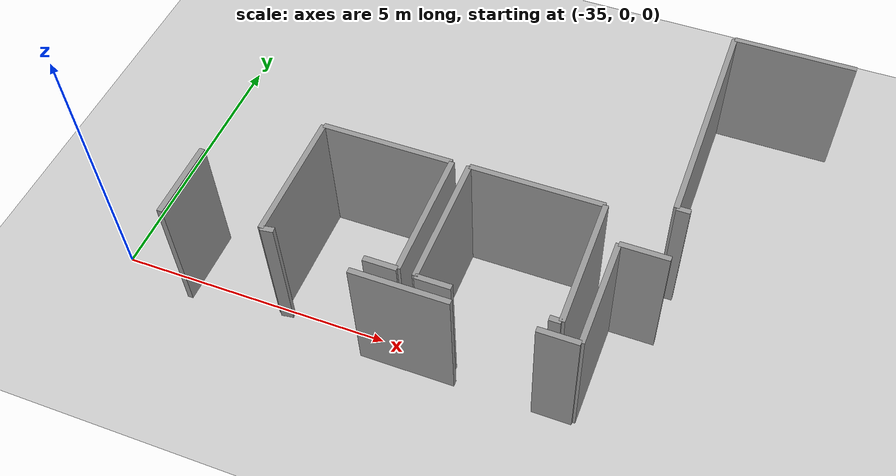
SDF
<sdf version="1.6">
 <world name="default">
  <model name="ground_plane">
   <static>1</static>
   <link name="link">
    <collision name="collision">
     <geometry><plane><normal>0 0 1</normal><size>100 100</size></plane></geometry>
     <surface><friction><ode><mu>100</mu><mu2>50</mu2></ode></friction></surface>
    </collision>
    <visual name="visual">
     <cast_shadows>0</cast_shadows>
     <geometry><plane><normal>0 0 1</normal><size>100 100</size></plane></geometry>
     <material>
      <script><uri>file://media/materials/scripts/gazebo.material</uri><name>Gazebo/Grey</name></script>
     </material>
    </visual>
   </link>
  </model>
  <model name="50045231">
   <static>1</static>
   <link name="Wall_22">
    <collision name="Wall_22_Collision">
     <geometry><box><size>1.41821204027 0.1 2.5</size></box></geometry>
     <pose>0.709106020137 0 1.25 0 0 0</pose>
    </collision>
    <visual name="Wall_22_Visual">
     <pose>0.709106020137 0 1.25 0 0 0</pose>
     <geometry><box><size>1.41821204027 0.1 2.5</size></box></geometry>
     <material>
      <script><uri>file://media/materials/scripts/gazebo.material</uri><name>Gazebo/Grey</name></script>
      <ambient>1 1 1 1</ambient>
     </material>
    </visual>
    <pose>13.4067161102 -13.8649037882 0 0 0 -1.57079632679</pose>
   </link>
   <link name="Wall_31">
    <collision name="Wall_31_Collision">
     <geometry><box><size>1.72667347625 0.1 2.5</size></box></geometry>
     <pose>0.863336738125 0 1.25 0 0 0</pose>
    </collision>
    <visual name="Wall_31_Visual">
     <pose>0.863336738125 0 1.25 0 0 0</pose>
     <geometry><box><size>1.72667347625 0.1 2.5</size></box></geometry>
     <material>
      <script><uri>file://media/materials/scripts/gazebo.material</uri><name>Gazebo/Grey</name></script>
      <ambient>1 1 1 1</ambient>
     </material>
    </visual>
    <pose>16.7492910209 -15.2748681965 0 0 0 0.0</pose>
   </link>
   <link name="Wall_32">
    <collision name="Wall_32_Collision">
     <geometry><box><size>0.70916946346 0.1 2.5</size></box></geometry>
     <pose>0.35458473173 0 1.25 0 0 0</pose>
    </collision>
    <visual name="Wall_32_Visual">
     <pose>0.35458473173 0 1.25 0 0 0</pose>
     <geometry><box><size>0.70916946346 0.1 2.5</size></box></geometry>
     <material>
      <script><uri>file://media/materials/scripts/gazebo.material</uri><name>Gazebo/Grey</name></script>
      <ambient>1 1 1 1</ambient>
     </material>
    </visual>
    <pose>19.8474822517 -15.2748681965 0 0 0 0.0</pose>
   </link>
   <link name="Wall_33">
    <collision name="Wall_33_Collision">
     <geometry><box><size>1.95227793251 0.1 2.5</size></box></geometry>
     <pose>0.976138966254 0 1.25 0 0 0</pose>
    </collision>
    <visual name="Wall_33_Visual">
     <pose>0.976138966254 0 1.25 0 0 0</pose>
     <geometry><box><size>1.95227793251 0.1 2.5</size></box></geometry>
     <material>
      <script><uri>file://media/materials/scripts/gazebo.material</uri><name>Gazebo/Grey</name></script>
      <ambient>1 1 1 1</ambient>
     </material>
    </visual>
    <pose>20.5566517152 -15.2748681965 0 0 0 1.57079632679</pose>
   </link>
   <link name="Wall_34">
    <collision name="Wall_34_Collision">
     <geometry><box><size>0.859276365459 0.1 2.5</size></box></geometry>
     <pose>0.429638182729 0 1.25 0 0 0</pose>
    </collision>
    <visual name="Wall_34_Visual">
     <pose>0.429638182729 0 1.25 0 0 0</pose>
     <geometry><box><size>0.859276365459 0.1 2.5</size></box></geometry>
     <material>
      <script><uri>file://media/materials/scripts/gazebo.material</uri><name>Gazebo/Grey</name></script>
      <ambient>1 1 1 1</ambient>
     </material>
    </visual>
    <pose>20.5566517152 -13.322590264 0 0 0 0.0</pose>
   </link>
   <link name="Wall_42">
    <collision name="Wall_42_Collision">
     <geometry><box><size>0.200227127096 0.1 2.5</size></box></geometry>
     <pose>0.100113563548 0 1.25 0 0 0</pose>
    </collision>
    <visual name="Wall_42_Visual">
     <pose>0.100113563548 0 1.25 0 0 0</pose>
     <geometry><box><size>0.200227127096 0.1 2.5</size></box></geometry>
     <material>
      <script><uri>file://media/materials/scripts/gazebo.material</uri><name>Gazebo/Grey</name></script>
      <ambient>1 1 1 1</ambient>
     </material>
    </visual>
    <pose>20.1645719796 -15.0161463257 0 0 0 3.14159265359</pose>
   </link>
   <link name="Wall_43">
    <collision name="Wall_43_Collision">
     <geometry><box><size>0.617937965119 0.1 2.5</size></box></geometry>
     <pose>0.308968982559 0 1.25 0 0 0</pose>
    </collision>
    <visual name="Wall_43_Visual">
     <pose>0.308968982559 0 1.25 0 0 0</pose>
     <geometry><box><size>0.617937965119 0.1 2.5</size></box></geometry>
     <material>
      <script><uri>file://media/materials/scripts/gazebo.material</uri><name>Gazebo/Grey</name></script>
      <ambient>1 1 1 1</ambient>
     </material>
    </visual>
    <pose>18.3858749786 -15.0161463257 0 0 0 3.14159265359</pose>
   </link>
   <link name="Wall_44">
    <collision name="Wall_44_Collision">
     <geometry><box><size>2.36288311837 0.1 2.5</size></box></geometry>
     <pose>1.18144155918 0 1.25 0 0 0</pose>
    </collision>
    <visual name="Wall_44_Visual">
     <pose>1.18144155918 0 1.25 0 0 0</pose>
     <geometry><box><size>2.36288311837 0.1 2.5</size></box></geometry>
     <material>
      <script><uri>file://media/materials/scripts/gazebo.material</uri><name>Gazebo/Grey</name></script>
      <ambient>1 1 1 1</ambient>
     </material>
    </visual>
    <pose>17.7679370135 -15.0161463257 0 0 0 1.57079632679</pose>
   </link>
   <link name="Wall_45">
    <collision name="Wall_45_Collision">
     <geometry><box><size>2.37227273016 0.1 2.5</size></box></geometry>
     <pose>1.18613636508 0 1.25 0 0 0</pose>
    </collision>
    <visual name="Wall_45_Visual">
     <pose>1.18613636508 0 1.25 0 0 0</pose>
     <geometry><box><size>2.37227273016 0.1 2.5</size></box></geometry>
     <material>
      <script><uri>file://media/materials/scripts/gazebo.material</uri><name>Gazebo/Grey</name></script>
      <ambient>1 1 1 1</ambient>
     </material>
    </visual>
    <pose>17.7679370135 -12.6532632073 0 0 0 0.0</pose>
   </link>
   <link name="Wall_46">
    <collision name="Wall_46_Collision">
     <geometry><box><size>2.36300870705 0.1 2.5</size></box></geometry>
     <pose>1.18150435353 0 1.25 0 0 0</pose>
    </collision>
    <visual name="Wall_46_Visual">
     <pose>1.18150435353 0 1.25 0 0 0</pose>
     <geometry><box><size>2.36300870705 0.1 2.5</size></box></geometry>
     <material>
      <script><uri>file://media/materials/scripts/gazebo.material</uri><name>Gazebo/Grey</name></script>
      <ambient>1 1 1 1</ambient>
     </material>
    </visual>
    <pose>20.1402097436 -12.6532632073 0 0 0 -1.56048630655</pose>
   </link>
   <link name="Wall_47">
    <collision name="Wall_47_Collision">
     <geometry><box><size>2.35006756714 0.1 2.5</size></box></geometry>
     <pose>1.17503378357 0 1.25 0 0 0</pose>
    </collision>
    <visual name="Wall_47_Visual">
     <pose>1.17503378357 0 1.25 0 0 0</pose>
     <geometry><box><size>2.35006756714 0.1 2.5</size></box></geometry>
     <material>
      <script><uri>file://media/materials/scripts/gazebo.material</uri><name>Gazebo/Grey</name></script>
      <ambient>1 1 1 1</ambient>
     </material>
    </visual>
    <pose>15.0978613256 -15.0143699126 0 0 0 1.57079632679</pose>
   </link>
   <link name="Wall_48">
    <collision name="Wall_48_Collision">
     <geometry><box><size>2.36123359197 0.1 2.5</size></box></geometry>
     <pose>1.18061679599 0 1.25 0 0 0</pose>
    </collision>
    <visual name="Wall_48_Visual">
     <pose>1.18061679599 0 1.25 0 0 0</pose>
     <geometry><box><size>2.36123359197 0.1 2.5</size></box></geometry>
     <material>
      <script><uri>file://media/materials/scripts/gazebo.material</uri><name>Gazebo/Grey</name></script>
      <ambient>1 1 1 1</ambient>
     </material>
    </visual>
    <pose>15.0978613256 -12.6643023455 0 0 0 0.0</pose>
   </link>
   <link name="Wall_49">
    <collision name="Wall_49_Collision">
     <geometry><box><size>2.31847279233 0.1 2.5</size></box></geometry>
     <pose>1.15923639617 0 1.25 0 0 0</pose>
    </collision>
    <visual name="Wall_49_Visual">
     <pose>1.15923639617 0 1.25 0 0 0</pose>
     <geometry><box><size>2.31847279233 0.1 2.5</size></box></geometry>
     <material>
      <script><uri>file://media/materials/scripts/gazebo.material</uri><name>Gazebo/Grey</name></script>
      <ambient>1 1 1 1</ambient>
     </material>
    </visual>
    <pose>17.4590949176 -12.6643023455 0 0 0 -1.57079632679</pose>
   </link>
   <link name="Wall_50">
    <collision name="Wall_50_Collision">
     <geometry><box><size>0.581775271062 0.1 2.5</size></box></geometry>
     <pose>0.290887635531 0 1.25 0 0 0</pose>
    </collision>
    <visual name="Wall_50_Visual">
     <pose>0.290887635531 0 1.25 0 0 0</pose>
     <geometry><box><size>0.581775271062 0.1 2.5</size></box></geometry>
     <material>
      <script><uri>file://media/materials/scripts/gazebo.material</uri><name>Gazebo/Grey</name></script>
      <ambient>1 1 1 1</ambient>
     </material>
    </visual>
    <pose>17.4590949176 -14.9827751378 0 0 0 3.14159265359</pose>
   </link>
   <link name="Wall_51">
    <collision name="Wall_51_Collision">
     <geometry><box><size>0.224539355584 0.1 2.5</size></box></geometry>
     <pose>0.112269677792 0 1.25 0 0 0</pose>
    </collision>
    <visual name="Wall_51_Visual">
     <pose>0.112269677792 0 1.25 0 0 0</pose>
     <geometry><box><size>0.224539355584 0.1 2.5</size></box></geometry>
     <material>
      <script><uri>file://media/materials/scripts/gazebo.material</uri><name>Gazebo/Grey</name></script>
      <ambient>1 1 1 1</ambient>
     </material>
    </visual>
    <pose>15.3201667291 -14.9827751378 0 0 0 -3.00041485084</pose>
   </link>
   <link name="Wall_52">
    <collision name="Wall_52_Collision">
     <geometry><box><size>4.17457064731 0.1 2.5</size></box></geometry>
     <pose>2.08728532366 0 1.25 0 0 0</pose>
    </collision>
    <visual name="Wall_52_Visual">
     <pose>2.08728532366 0 1.25 0 0 0</pose>
     <geometry><box><size>4.17457064731 0.1 2.5</size></box></geometry>
     <material>
      <script><uri>file://media/materials/scripts/gazebo.material</uri><name>Gazebo/Grey</name></script>
      <ambient>1 1 1 1</ambient>
     </material>
    </visual>
    <pose>21.2281358448 -12.3078777574 0 0 0 1.57079632679</pose>
   </link>
   <link name="Wall_53">
    <collision name="Wall_53_Collision">
     <geometry><box><size>2.22051630176 0.1 2.5</size></box></geometry>
     <pose>1.11025815088 0 1.25 0 0 0</pose>
    </collision>
    <visual name="Wall_53_Visual">
     <pose>1.11025815088 0 1.25 0 0 0</pose>
     <geometry><box><size>2.22051630176 0.1 2.5</size></box></geometry>
     <material>
      <script><uri>file://media/materials/scripts/gazebo.material</uri><name>Gazebo/Grey</name></script>
      <ambient>1 1 1 1</ambient>
     </material>
    </visual>
    <pose>21.2281358448 -8.13330711009 0 0 0 0.0</pose>
   </link>
   <link name="Wall_56">
    <collision name="Wall_56_Collision">
     <geometry><box><size>0.241084627048 0.1 2.5</size></box></geometry>
     <pose>0.120542313524 0 1.25 0 0 0</pose>
    </collision>
    <visual name="Wall_56_Visual">
     <pose>0.120542313524 0 1.25 0 0 0</pose>
     <geometry><box><size>0.241084627048 0.1 2.5</size></box></geometry>
     <material>
      <script><uri>file://media/materials/scripts/gazebo.material</uri><name>Gazebo/Grey</name></script>
      <ambient>1 1 1 1</ambient>
     </material>
    </visual>
    <pose>21.4692204719 -12.3078777574 0 0 0 3.14159265359</pose>
   </link>
   <pose>-47.0 14.9250800972 0 0 0 0</pose>
  </model>
 </world>
</sdf>
